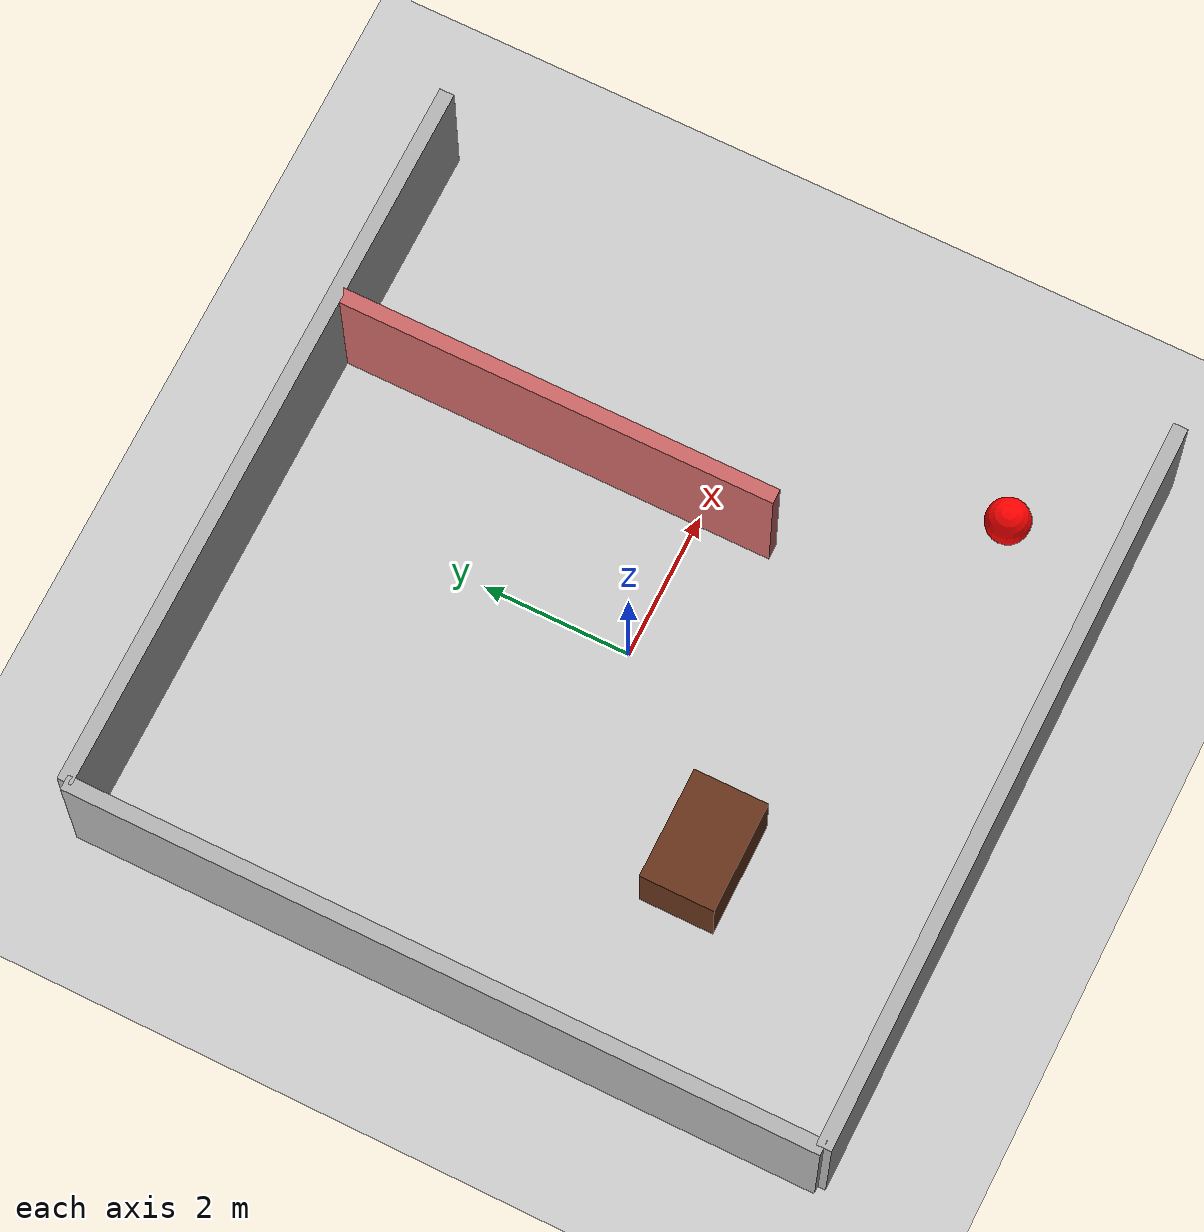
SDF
<?xml version="1.0" ?>
<sdf version="1.8">
  <world name="multi_room_house">

    <physics name="1ms" type="ignored">
      <max_step_size>0.001</max_step_size>
      <real_time_factor>1.0</real_time_factor>
    </physics>

    <plugin filename="gz-sim-physics-system" name="gz::sim::systems::Physics"></plugin>
    <plugin filename="gz-sim-sensors-system" name="gz::sim::systems::Sensors">
      <render_engine>ogre</render_engine> </plugin>
    <plugin filename="gz-sim-user-commands-system" name="gz::sim::systems::UserCommands"></plugin>
    <plugin filename="gz-sim-scene-broadcaster-system" name="gz::sim::systems::SceneBroadcaster"></plugin>
    <plugin filename="libGasSourcePlugin.so" name="gas_mapping::GasSourcePlugin">
      <gas_source_x>3.5</gas_source_x>
      <gas_source_y>-3.5</gas_source_y>
    </plugin>

    <light type="directional" name="sun">
      <cast_shadows>true</cast_shadows>
      <pose>0 0 10 0 0 0</pose>
      <diffuse>0.8 0.8 0.8 1</diffuse>
      <specular>0.2 0.2 0.2 1</specular>
      <direction>-0.5 0.1 -0.9</direction>
    </light>

    <model name="ground_plane">
      <static>true</static>
      <link name="link">
        <collision name="collision">
          <geometry><plane><normal>0 0 1</normal><size>100 100</size></plane></geometry>
        </collision>
        <visual name="visual">
          <geometry><plane><normal>0 0 1</normal><size>100 100</size></plane></geometry>
          <material><ambient>0.8 0.8 0.8 1</ambient><diffuse>0.8 0.8 0.8 1</diffuse></material>
        </visual>
      </link>
    </model>

    <model name="house_walls">
      <static>true</static>

      <link name="wall_1">
        <pose>0 5 1 0 0 0</pose>
        <collision name="c1"><geometry><box><size>10.0 0.2 2.0</size></box></geometry></collision>
        <visual name="v1"><geometry><box><size>10.0 0.2 2.0</size></box></geometry><material><diffuse>0.7 0.7 0.7 1</diffuse></material></visual>
      </link>

      <link name="wall_2">
        <pose>0 -5 1 0 0 0</pose>
        <collision name="c2"><geometry><box><size>10.0 0.2 2.0</size></box></geometry></collision>
        <visual name="v2"><geometry><box><size>10.0 0.2 2.0</size></box></geometry><material><diffuse>0.7 0.7 0.7 1</diffuse></material></visual>
      </link>

      <link name="wall_3">
        <pose>-5 0 1 0 0 0</pose>
        <collision name="c3"><geometry><box><size>0.2 10.0 2.0</size></box></geometry></collision>
        <visual name="v3"><geometry><box><size>0.2 10.0 2.0</size></box></geometry><material><diffuse>0.7 0.7 0.7 1</diffuse></material></visual>
      </link>

      <link name="wall_4">
        <pose>2 2 1 0 0 0</pose>
        <collision name="c4"><geometry><box><size>0.2 6.0 2.0</size></box></geometry></collision>
        <visual name="v4"><geometry><box><size>0.2 6.0 2.0</size></box></geometry><material><diffuse>0.8 0.4 0.4 1</diffuse></material></visual>
      </link>

      <link name="table">
        <pose>-2 -2 0.5 0 0 0</pose>
        <collision name="c_table"><geometry><box><size>1.5 1.0 1.0</size></box></geometry></collision>
        <visual name="v_table"><geometry><box><size>1.5 1.0 1.0</size></box></geometry><material><diffuse>0.4 0.2 0.1 1</diffuse></material></visual>
      </link>

    </model>

    <model name="gas_source_marker">
      <static>true</static>
      <pose>3.5 -3.5 0.5 0 0 0</pose>
      <link name="link">
        <visual name="visual">
          <geometry><sphere><radius>0.3</radius></sphere></geometry>
          <material>
            <ambient>1 0 0 1</ambient>
            <diffuse>1 0 0 1</diffuse>
            <emissive>1 0 0 1</emissive>
          </material>
        </visual>
      </link>
    </model>

  </world>
</sdf>
